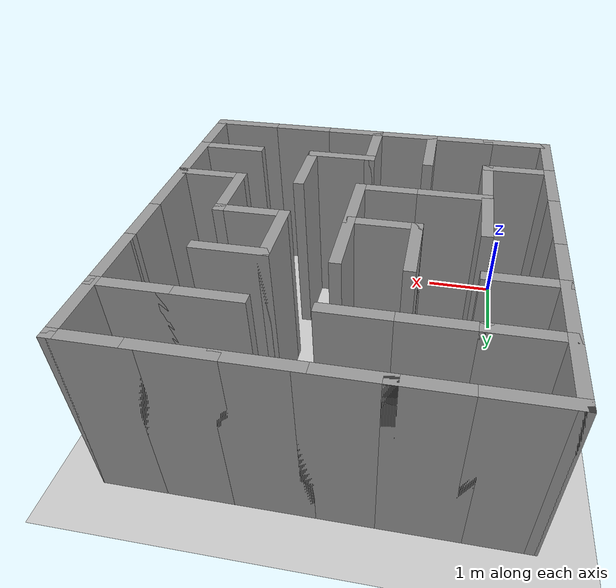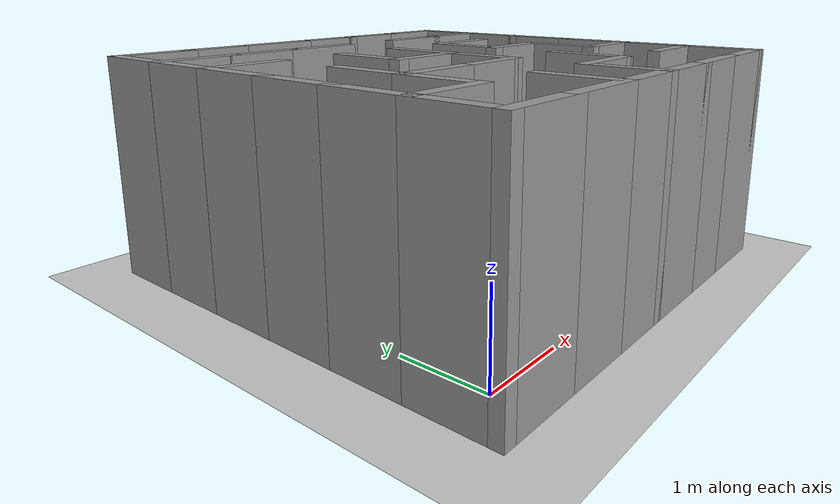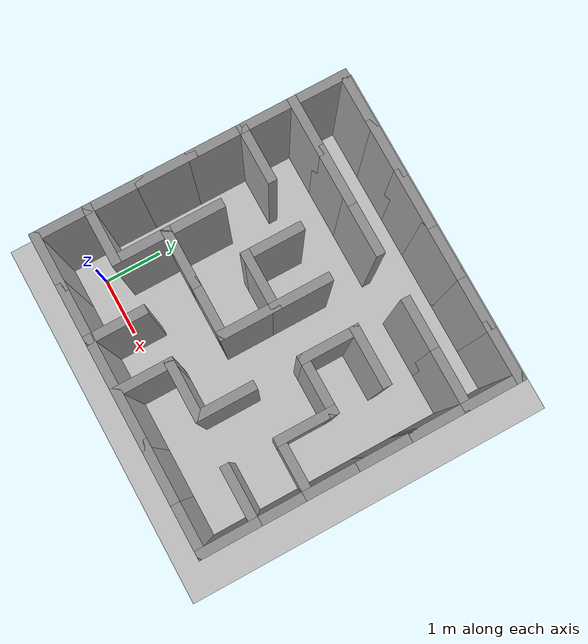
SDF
<sdf version="1.6">
 <world name="default">
  <scene><ambient>0.4 0.4 0.4 1</ambient><background>0.7 0.7 0.7 1</background><shadows>1</shadows></scene>
  <light name="sun" type="directional">
   <pose>0 0 10 0 -0 0</pose>
   <diffuse>0.8 0.8 0.8 1</diffuse>
   <specular>0.2 0.2 0.2 1</specular>
   <attenuation>
    <range>1000</range>
    <constant>0.9</constant>
    <linear>0.01</linear>
    <quadratic>0.001</quadratic>
   </attenuation>
   <direction>-0.5 0.1 -0.9</direction>
  </light>
  <model name="ground_plane">
   <static>1</static>
   <link name="link">
    <collision name="collision">
     <geometry><plane><normal>0 0 1</normal><size>100 100</size></plane></geometry>
     <surface>
      <contact><collide_bitmask>65535</collide_bitmask></contact>
      <friction><ode><mu>100</mu><mu2>50</mu2></ode></friction>
     </surface>
    </collision>
    <visual name="visual">
     <cast_shadows>0</cast_shadows>
     <geometry><plane><normal>0 0 1</normal><size>100 100</size></plane></geometry>
     <material>
      <script><uri>file://media/materials/scripts/gazebo.material</uri><name>Gazebo/Grey</name></script>
     </material>
    </visual>
   </link>
  </model>
  <physics name="default_physics" default="0" type="ode">
   <real_time_update_rate>1000</real_time_update_rate>
   <max_step_size>0.001</max_step_size>
   <real_time_factor>1</real_time_factor>
   <ode>
    <solver>
     <type>quick</type>
     <iters>150</iters>
     <precon_iters>0</precon_iters>
     <sor>1.4</sor>
     <use_dynamic_moi_rescaling>1</use_dynamic_moi_rescaling>
    </solver>
    <constraints>
     <cfm>1e-05</cfm>
     <erp>0.2</erp>
     <contact_max_correcting_vel>2000</contact_max_correcting_vel>
     <contact_surface_layer>0.01</contact_surface_layer>
    </constraints>
   </ode>
  </physics>
  <gravity>0 0 -9.8</gravity>
  <magnetic_field>6e-06 2.3e-05 -4.2e-05</magnetic_field>
  <atmosphere type="adiabatic"/>
  <spherical_coordinates>
   <surface_model>EARTH_WGS84</surface_model>
   <latitude_deg>0</latitude_deg>
   <longitude_deg>0</longitude_deg>
   <elevation>0</elevation>
   <heading_deg>0</heading_deg>
  </spherical_coordinates>
  <model name="1">
   <pose>2.0634 2.09094 0 0 -0 0</pose>
   <link name="Wall_0">
    <collision name="Wall_0_Collision">
     <geometry><box><size>1 0.15 2.5</size></box></geometry>
     <pose>0 0 1.25 0 -0 0</pose>
    </collision>
    <visual name="Wall_0_Visual">
     <pose>0 0 1.25 0 -0 0</pose>
     <geometry><box><size>1 0.15 2.5</size></box></geometry>
     <material>
      <script><uri>file://media/materials/scripts/gazebo.material</uri><name>Gazebo/Grey</name></script>
      <ambient>1 1 1 1</ambient>
     </material>
     <meta><layer>0</layer></meta>
    </visual>
    <pose>-0.425 -2.55 0 0 -0 0</pose>
   </link>
   <link name="Wall_10">
    <collision name="Wall_10_Collision">
     <geometry><box><size>1 0.15 2.5</size></box></geometry>
     <pose>0 0 1.25 0 -0 0</pose>
    </collision>
    <visual name="Wall_10_Visual">
     <pose>0 0 1.25 0 -0 0</pose>
     <geometry><box><size>1 0.15 2.5</size></box></geometry>
     <material>
      <script><uri>file://media/materials/scripts/gazebo.material</uri><name>Gazebo/Grey</name></script>
      <ambient>1 1 1 1</ambient>
     </material>
     <meta><layer>0</layer></meta>
    </visual>
    <pose>2.125 -2.55 0 0 -0 0</pose>
   </link>
   <link name="Wall_101">
    <collision name="Wall_101_Collision">
     <geometry><box><size>1 0.15 2.5</size></box></geometry>
     <pose>0 0 1.25 0 -0 0</pose>
    </collision>
    <visual name="Wall_101_Visual">
     <pose>0 0 1.25 0 -0 0</pose>
     <geometry><box><size>1 0.15 2.5</size></box></geometry>
     <material>
      <script><uri>file://media/materials/scripts/gazebo.material</uri><name>Gazebo/Grey</name></script>
      <ambient>1 1 1 1</ambient>
     </material>
     <meta><layer>0</layer></meta>
    </visual>
    <pose>2.55 2.125 0 0 -0 1.5708</pose>
   </link>
   <link name="Wall_12">
    <collision name="Wall_12_Collision">
     <geometry><box><size>1 0.15 2.5</size></box></geometry>
     <pose>0 0 1.25 0 -0 0</pose>
    </collision>
    <visual name="Wall_12_Visual">
     <pose>0 0 1.25 0 -0 0</pose>
     <geometry><box><size>1 0.15 2.5</size></box></geometry>
     <material>
      <script><uri>file://media/materials/scripts/gazebo.material</uri><name>Gazebo/Grey</name></script>
      <ambient>1 1 1 1</ambient>
     </material>
     <meta><layer>0</layer></meta>
    </visual>
    <pose>2.55 -2.125 0 0 -0 1.5708</pose>
   </link>
   <link name="Wall_14">
    <collision name="Wall_14_Collision">
     <geometry><box><size>1 0.15 2.5</size></box></geometry>
     <pose>0 0 1.25 0 -0 0</pose>
    </collision>
    <visual name="Wall_14_Visual">
     <pose>0 0 1.25 0 -0 0</pose>
     <geometry><box><size>1 0.15 2.5</size></box></geometry>
     <material>
      <script><uri>file://media/materials/scripts/gazebo.material</uri><name>Gazebo/Grey</name></script>
      <ambient>1 1 1 1</ambient>
     </material>
     <meta><layer>0</layer></meta>
    </visual>
    <pose>2.125 -1.7 0 0 -0 3.14159</pose>
   </link>
   <link name="Wall_17">
    <collision name="Wall_17_Collision">
     <geometry><box><size>1 0.15 2.5</size></box></geometry>
     <pose>0 0 1.25 0 -0 0</pose>
    </collision>
    <visual name="Wall_17_Visual">
     <pose>0 0 1.25 0 -0 0</pose>
     <geometry><box><size>1 0.15 2.5</size></box></geometry>
     <material>
      <script><uri>file://media/materials/scripts/gazebo.material</uri><name>Gazebo/Grey</name></script>
      <ambient>1 1 1 1</ambient>
     </material>
     <meta><layer>0</layer></meta>
    </visual>
    <pose>-0.85 -2.125 0 0 -0 1.5708</pose>
   </link>
   <link name="Wall_19">
    <collision name="Wall_19_Collision">
     <geometry><box><size>1 0.15 2.5</size></box></geometry>
     <pose>0 0 1.25 0 -0 0</pose>
    </collision>
    <visual name="Wall_19_Visual">
     <pose>0 0 1.25 0 -0 0</pose>
     <geometry><box><size>1 0.15 2.5</size></box></geometry>
     <material>
      <script><uri>file://media/materials/scripts/gazebo.material</uri><name>Gazebo/Grey</name></script>
      <ambient>1 1 1 1</ambient>
     </material>
     <meta><layer>0</layer></meta>
    </visual>
    <pose>-1.275 -2.55 0 0 -0 3.14159</pose>
   </link>
   <link name="Wall_2">
    <collision name="Wall_2_Collision">
     <geometry><box><size>1 0.15 2.5</size></box></geometry>
     <pose>0 0 1.25 0 -0 0</pose>
    </collision>
    <visual name="Wall_2_Visual">
     <pose>0 0 1.25 0 -0 0</pose>
     <geometry><box><size>1 0.15 2.5</size></box></geometry>
     <material>
      <script><uri>file://media/materials/scripts/gazebo.material</uri><name>Gazebo/Grey</name></script>
      <ambient>1 1 1 1</ambient>
     </material>
     <meta><layer>0</layer></meta>
    </visual>
    <pose>0 -2.125 0 0 -0 1.5708</pose>
   </link>
   <link name="Wall_21">
    <collision name="Wall_21_Collision">
     <geometry><box><size>1 0.15 2.5</size></box></geometry>
     <pose>0 0 1.25 0 -0 0</pose>
    </collision>
    <visual name="Wall_21_Visual">
     <pose>0 0 1.25 0 -0 0</pose>
     <geometry><box><size>1 0.15 2.5</size></box></geometry>
     <material>
      <script><uri>file://media/materials/scripts/gazebo.material</uri><name>Gazebo/Grey</name></script>
      <ambient>1 1 1 1</ambient>
     </material>
     <meta><layer>0</layer></meta>
    </visual>
    <pose>-2.125 -2.55 0 0 -0 3.14159</pose>
   </link>
   <link name="Wall_23">
    <collision name="Wall_23_Collision">
     <geometry><box><size>1 0.15 2.5</size></box></geometry>
     <pose>0 0 1.25 0 -0 0</pose>
    </collision>
    <visual name="Wall_23_Visual">
     <pose>0 0 1.25 0 -0 0</pose>
     <geometry><box><size>1 0.15 2.5</size></box></geometry>
     <material>
      <script><uri>file://media/materials/scripts/gazebo.material</uri><name>Gazebo/Grey</name></script>
      <ambient>1 1 1 1</ambient>
     </material>
     <meta><layer>0</layer></meta>
    </visual>
    <pose>-2.55 -2.125 0 0 -0 1.5708</pose>
   </link>
   <link name="Wall_25">
    <collision name="Wall_25_Collision">
     <geometry><box><size>1 0.15 2.5</size></box></geometry>
     <pose>0 0 1.25 0 -0 0</pose>
    </collision>
    <visual name="Wall_25_Visual">
     <pose>0 0 1.25 0 -0 0</pose>
     <geometry><box><size>1 0.15 2.5</size></box></geometry>
     <material>
      <script><uri>file://media/materials/scripts/gazebo.material</uri><name>Gazebo/Grey</name></script>
      <ambient>1 1 1 1</ambient>
     </material>
     <meta><layer>0</layer></meta>
    </visual>
    <pose>-2.125 -1.7 0 0 -0 0</pose>
   </link>
   <link name="Wall_27">
    <collision name="Wall_27_Collision">
     <geometry><box><size>1 0.15 2.5</size></box></geometry>
     <pose>0 0 1.25 0 -0 0</pose>
    </collision>
    <visual name="Wall_27_Visual">
     <pose>0 0 1.25 0 -0 0</pose>
     <geometry><box><size>1 0.15 2.5</size></box></geometry>
     <material>
      <script><uri>file://media/materials/scripts/gazebo.material</uri><name>Gazebo/Grey</name></script>
      <ambient>1 1 1 1</ambient>
     </material>
     <meta><layer>0</layer></meta>
    </visual>
    <pose>-1.7 -1.275 0 0 -0 1.5708</pose>
   </link>
   <link name="Wall_29">
    <collision name="Wall_29_Collision">
     <geometry><box><size>1 0.15 2.5</size></box></geometry>
     <pose>0 0 1.25 0 -0 0</pose>
    </collision>
    <visual name="Wall_29_Visual">
     <pose>0 0 1.25 0 -0 0</pose>
     <geometry><box><size>1 0.15 2.5</size></box></geometry>
     <material>
      <script><uri>file://media/materials/scripts/gazebo.material</uri><name>Gazebo/Grey</name></script>
      <ambient>1 1 1 1</ambient>
     </material>
     <meta><layer>0</layer></meta>
    </visual>
    <pose>-1.275 -0.85 0 0 -0 0</pose>
   </link>
   <link name="Wall_31">
    <collision name="Wall_31_Collision">
     <geometry><box><size>1 0.15 2.5</size></box></geometry>
     <pose>0 0 1.25 0 -0 0</pose>
    </collision>
    <visual name="Wall_31_Visual">
     <pose>0 0 1.25 0 -0 0</pose>
     <geometry><box><size>1 0.15 2.5</size></box></geometry>
     <material>
      <script><uri>file://media/materials/scripts/gazebo.material</uri><name>Gazebo/Grey</name></script>
      <ambient>1 1 1 1</ambient>
     </material>
     <meta><layer>0</layer></meta>
    </visual>
    <pose>-0.425 -0.85 0 0 -0 0</pose>
   </link>
   <link name="Wall_33">
    <collision name="Wall_33_Collision">
     <geometry><box><size>1 0.15 2.5</size></box></geometry>
     <pose>0 0 1.25 0 -0 0</pose>
    </collision>
    <visual name="Wall_33_Visual">
     <pose>0 0 1.25 0 -0 0</pose>
     <geometry><box><size>1 0.15 2.5</size></box></geometry>
     <material>
      <script><uri>file://media/materials/scripts/gazebo.material</uri><name>Gazebo/Grey</name></script>
      <ambient>1 1 1 1</ambient>
     </material>
     <meta><layer>0</layer></meta>
    </visual>
    <pose>0.85 -1.275 0 0 -0 1.5708</pose>
   </link>
   <link name="Wall_35">
    <collision name="Wall_35_Collision">
     <geometry><box><size>1 0.15 2.5</size></box></geometry>
     <pose>0 0 1.25 0 -0 0</pose>
    </collision>
    <visual name="Wall_35_Visual">
     <pose>0 0 1.25 0 -0 0</pose>
     <geometry><box><size>1 0.15 2.5</size></box></geometry>
     <material>
      <script><uri>file://media/materials/scripts/gazebo.material</uri><name>Gazebo/Grey</name></script>
      <ambient>1 1 1 1</ambient>
     </material>
     <meta><layer>0</layer></meta>
    </visual>
    <pose>-2.55 -1.275 0 0 -0 1.5708</pose>
   </link>
   <link name="Wall_37">
    <collision name="Wall_37_Collision">
     <geometry><box><size>1 0.15 2.5</size></box></geometry>
     <pose>0 0 1.25 0 -0 0</pose>
    </collision>
    <visual name="Wall_37_Visual">
     <pose>0 0 1.25 0 -0 0</pose>
     <geometry><box><size>1 0.15 2.5</size></box></geometry>
     <material>
      <script><uri>file://media/materials/scripts/gazebo.material</uri><name>Gazebo/Grey</name></script>
      <ambient>1 1 1 1</ambient>
     </material>
     <meta><layer>0</layer></meta>
    </visual>
    <pose>-2.55 -0.425 0 0 -0 1.5708</pose>
   </link>
   <link name="Wall_39">
    <collision name="Wall_39_Collision">
     <geometry><box><size>1 0.15 2.5</size></box></geometry>
     <pose>0 0 1.25 0 -0 0</pose>
    </collision>
    <visual name="Wall_39_Visual">
     <pose>0 0 1.25 0 -0 0</pose>
     <geometry><box><size>1 0.15 2.5</size></box></geometry>
     <material>
      <script><uri>file://media/materials/scripts/gazebo.material</uri><name>Gazebo/Grey</name></script>
      <ambient>1 1 1 1</ambient>
     </material>
     <meta><layer>0</layer></meta>
    </visual>
    <pose>2.55 -1.275 0 0 -0 1.5708</pose>
   </link>
   <link name="Wall_4">
    <collision name="Wall_4_Collision">
     <geometry><box><size>1 0.15 2.5</size></box></geometry>
     <pose>0 0 1.25 0 -0 0</pose>
    </collision>
    <visual name="Wall_4_Visual">
     <pose>0 0 1.25 0 -0 0</pose>
     <geometry><box><size>1 0.15 2.5</size></box></geometry>
     <material>
      <script><uri>file://media/materials/scripts/gazebo.material</uri><name>Gazebo/Grey</name></script>
      <ambient>1 1 1 1</ambient>
     </material>
     <meta><layer>0</layer></meta>
    </visual>
    <pose>0.425 -1.7 0 0 -0 0</pose>
   </link>
   <link name="Wall_41">
    <collision name="Wall_41_Collision">
     <geometry><box><size>1 0.15 2.5</size></box></geometry>
     <pose>0 0 1.25 0 -0 0</pose>
    </collision>
    <visual name="Wall_41_Visual">
     <pose>0 0 1.25 0 -0 0</pose>
     <geometry><box><size>1 0.15 2.5</size></box></geometry>
     <material>
      <script><uri>file://media/materials/scripts/gazebo.material</uri><name>Gazebo/Grey</name></script>
      <ambient>1 1 1 1</ambient>
     </material>
     <meta><layer>0</layer></meta>
    </visual>
    <pose>2.125 -0.85 0 0 -0 3.14159</pose>
   </link>
   <link name="Wall_44">
    <collision name="Wall_44_Collision">
     <geometry><box><size>1 0.15 2.5</size></box></geometry>
     <pose>0 0 1.25 0 -0 0</pose>
    </collision>
    <visual name="Wall_44_Visual">
     <pose>0 0 1.25 0 -0 0</pose>
     <geometry><box><size>1 0.15 2.5</size></box></geometry>
     <material>
      <script><uri>file://media/materials/scripts/gazebo.material</uri><name>Gazebo/Grey</name></script>
      <ambient>1 1 1 1</ambient>
     </material>
     <meta><layer>0</layer></meta>
    </visual>
    <pose>1.7 -0.425 0 0 -0 1.5708</pose>
   </link>
   <link name="Wall_46">
    <collision name="Wall_46_Collision">
     <geometry><box><size>1 0.15 2.5</size></box></geometry>
     <pose>0 0 1.25 0 -0 0</pose>
    </collision>
    <visual name="Wall_46_Visual">
     <pose>0 0 1.25 0 -0 0</pose>
     <geometry><box><size>1 0.15 2.5</size></box></geometry>
     <material>
      <script><uri>file://media/materials/scripts/gazebo.material</uri><name>Gazebo/Grey</name></script>
      <ambient>1 1 1 1</ambient>
     </material>
     <meta><layer>0</layer></meta>
    </visual>
    <pose>1.275 0 0 0 -0 3.14159</pose>
   </link>
   <link name="Wall_48">
    <collision name="Wall_48_Collision">
     <geometry><box><size>1 0.15 2.5</size></box></geometry>
     <pose>0 0 1.25 0 -0 0</pose>
    </collision>
    <visual name="Wall_48_Visual">
     <pose>0 0 1.25 0 -0 0</pose>
     <geometry><box><size>1 0.15 2.5</size></box></geometry>
     <material>
      <script><uri>file://media/materials/scripts/gazebo.material</uri><name>Gazebo/Grey</name></script>
      <ambient>1 1 1 1</ambient>
     </material>
     <meta><layer>0</layer></meta>
    </visual>
    <pose>0 -0.425 0 0 -0 1.5708</pose>
   </link>
   <link name="Wall_50">
    <collision name="Wall_50_Collision">
     <geometry><box><size>1 0.15 2.5</size></box></geometry>
     <pose>0 0 1.25 0 -0 0</pose>
    </collision>
    <visual name="Wall_50_Visual">
     <pose>0 0 1.25 0 -0 0</pose>
     <geometry><box><size>1 0.15 2.5</size></box></geometry>
     <material>
      <script><uri>file://media/materials/scripts/gazebo.material</uri><name>Gazebo/Grey</name></script>
      <ambient>1 1 1 1</ambient>
     </material>
     <meta><layer>0</layer></meta>
    </visual>
    <pose>-1.7 -0.425 0 0 -0 1.5708</pose>
   </link>
   <link name="Wall_52">
    <collision name="Wall_52_Collision">
     <geometry><box><size>1 0.15 2.5</size></box></geometry>
     <pose>0 0 1.25 0 -0 0</pose>
    </collision>
    <visual name="Wall_52_Visual">
     <pose>0 0 1.25 0 -0 0</pose>
     <geometry><box><size>1 0.15 2.5</size></box></geometry>
     <material>
      <script><uri>file://media/materials/scripts/gazebo.material</uri><name>Gazebo/Grey</name></script>
      <ambient>1 1 1 1</ambient>
     </material>
     <meta><layer>0</layer></meta>
    </visual>
    <pose>2.55 -0.425 0 0 -0 1.5708</pose>
   </link>
   <link name="Wall_54">
    <collision name="Wall_54_Collision">
     <geometry><box><size>1 0.15 2.5</size></box></geometry>
     <pose>0 0 1.25 0 -0 0</pose>
    </collision>
    <visual name="Wall_54_Visual">
     <pose>0 0 1.25 0 -0 0</pose>
     <geometry><box><size>1 0.15 2.5</size></box></geometry>
     <material>
      <script><uri>file://media/materials/scripts/gazebo.material</uri><name>Gazebo/Grey</name></script>
      <ambient>1 1 1 1</ambient>
     </material>
     <meta><layer>0</layer></meta>
    </visual>
    <pose>-2.55 0.425 0 0 -0 1.5708</pose>
   </link>
   <link name="Wall_56">
    <collision name="Wall_56_Collision">
     <geometry><box><size>1 0.15 2.5</size></box></geometry>
     <pose>0 0 1.25 0 -0 0</pose>
    </collision>
    <visual name="Wall_56_Visual">
     <pose>0 0 1.25 0 -0 0</pose>
     <geometry><box><size>1 0.15 2.5</size></box></geometry>
     <material>
      <script><uri>file://media/materials/scripts/gazebo.material</uri><name>Gazebo/Grey</name></script>
      <ambient>1 1 1 1</ambient>
     </material>
     <meta><layer>0</layer></meta>
    </visual>
    <pose>-2.125 0.85 0 0 -0 0</pose>
   </link>
   <link name="Wall_58">
    <collision name="Wall_58_Collision">
     <geometry><box><size>1 0.15 2.5</size></box></geometry>
     <pose>0 0 1.25 0 -0 0</pose>
    </collision>
    <visual name="Wall_58_Visual">
     <pose>0 0 1.25 0 -0 0</pose>
     <geometry><box><size>1 0.15 2.5</size></box></geometry>
     <material>
      <script><uri>file://media/materials/scripts/gazebo.material</uri><name>Gazebo/Grey</name></script>
      <ambient>1 1 1 1</ambient>
     </material>
     <meta><layer>0</layer></meta>
    </visual>
    <pose>-0.425 0 0 0 -0 3.14159</pose>
   </link>
   <link name="Wall_6">
    <collision name="Wall_6_Collision">
     <geometry><box><size>1 0.15 2.5</size></box></geometry>
     <pose>0 0 1.25 0 -0 0</pose>
    </collision>
    <visual name="Wall_6_Visual">
     <pose>0 0 1.25 0 -0 0</pose>
     <geometry><box><size>1 0.15 2.5</size></box></geometry>
     <material>
      <script><uri>file://media/materials/scripts/gazebo.material</uri><name>Gazebo/Grey</name></script>
      <ambient>1 1 1 1</ambient>
     </material>
     <meta><layer>0</layer></meta>
    </visual>
    <pose>0.425 -2.55 0 0 -0 0</pose>
   </link>
   <link name="Wall_60">
    <collision name="Wall_60_Collision">
     <geometry><box><size>1 0.15 2.5</size></box></geometry>
     <pose>0 0 1.25 0 -0 0</pose>
    </collision>
    <visual name="Wall_60_Visual">
     <pose>0 0 1.25 0 -0 0</pose>
     <geometry><box><size>1 0.15 2.5</size></box></geometry>
     <material>
      <script><uri>file://media/materials/scripts/gazebo.material</uri><name>Gazebo/Grey</name></script>
      <ambient>1 1 1 1</ambient>
     </material>
     <meta><layer>0</layer></meta>
    </visual>
    <pose>0.85 0.425 0 0 -0 1.5708</pose>
   </link>
   <link name="Wall_62">
    <collision name="Wall_62_Collision">
     <geometry><box><size>1 0.15 2.5</size></box></geometry>
     <pose>0 0 1.25 0 -0 0</pose>
    </collision>
    <visual name="Wall_62_Visual">
     <pose>0 0 1.25 0 -0 0</pose>
     <geometry><box><size>1 0.15 2.5</size></box></geometry>
     <material>
      <script><uri>file://media/materials/scripts/gazebo.material</uri><name>Gazebo/Grey</name></script>
      <ambient>1 1 1 1</ambient>
     </material>
     <meta><layer>0</layer></meta>
    </visual>
    <pose>0 0.425 0 0 -0 1.5708</pose>
   </link>
   <link name="Wall_64">
    <collision name="Wall_64_Collision">
     <geometry><box><size>1 0.15 2.5</size></box></geometry>
     <pose>0 0 1.25 0 -0 0</pose>
    </collision>
    <visual name="Wall_64_Visual">
     <pose>0 0 1.25 0 -0 0</pose>
     <geometry><box><size>1 0.15 2.5</size></box></geometry>
     <material>
      <script><uri>file://media/materials/scripts/gazebo.material</uri><name>Gazebo/Grey</name></script>
      <ambient>1 1 1 1</ambient>
     </material>
     <meta><layer>0</layer></meta>
    </visual>
    <pose>-0.85 0.425 0 0 -0 1.5708</pose>
   </link>
   <link name="Wall_66">
    <collision name="Wall_66_Collision">
     <geometry><box><size>1 0.15 2.5</size></box></geometry>
     <pose>0 0 1.25 0 -0 0</pose>
    </collision>
    <visual name="Wall_66_Visual">
     <pose>0 0 1.25 0 -0 0</pose>
     <geometry><box><size>1 0.15 2.5</size></box></geometry>
     <material>
      <script><uri>file://media/materials/scripts/gazebo.material</uri><name>Gazebo/Grey</name></script>
      <ambient>1 1 1 1</ambient>
     </material>
     <meta><layer>0</layer></meta>
    </visual>
    <pose>-2.55 1.275 0 0 -0 1.5708</pose>
   </link>
   <link name="Wall_68">
    <collision name="Wall_68_Collision">
     <geometry><box><size>1 0.15 2.5</size></box></geometry>
     <pose>0 0 1.25 0 -0 0</pose>
    </collision>
    <visual name="Wall_68_Visual">
     <pose>0 0 1.25 0 -0 0</pose>
     <geometry><box><size>1 0.15 2.5</size></box></geometry>
     <material>
      <script><uri>file://media/materials/scripts/gazebo.material</uri><name>Gazebo/Grey</name></script>
      <ambient>1 1 1 1</ambient>
     </material>
     <meta><layer>0</layer></meta>
    </visual>
    <pose>-2.125 1.7 0 0 -0 0</pose>
   </link>
   <link name="Wall_70">
    <collision name="Wall_70_Collision">
     <geometry><box><size>1 0.15 2.5</size></box></geometry>
     <pose>0 0 1.25 0 -0 0</pose>
    </collision>
    <visual name="Wall_70_Visual">
     <pose>0 0 1.25 0 -0 0</pose>
     <geometry><box><size>1 0.15 2.5</size></box></geometry>
     <material>
      <script><uri>file://media/materials/scripts/gazebo.material</uri><name>Gazebo/Grey</name></script>
      <ambient>1 1 1 1</ambient>
     </material>
     <meta><layer>0</layer></meta>
    </visual>
    <pose>-1.275 1.7 0 0 -0 0</pose>
   </link>
   <link name="Wall_72">
    <collision name="Wall_72_Collision">
     <geometry><box><size>1 0.15 2.5</size></box></geometry>
     <pose>0 0 1.25 0 -0 0</pose>
    </collision>
    <visual name="Wall_72_Visual">
     <pose>0 0 1.25 0 -0 0</pose>
     <geometry><box><size>1 0.15 2.5</size></box></geometry>
     <material>
      <script><uri>file://media/materials/scripts/gazebo.material</uri><name>Gazebo/Grey</name></script>
      <ambient>1 1 1 1</ambient>
     </material>
     <meta><layer>0</layer></meta>
    </visual>
    <pose>-0.425 1.7 0 0 -0 0</pose>
   </link>
   <link name="Wall_76">
    <collision name="Wall_76_Collision">
     <geometry><box><size>1 0.15 2.5</size></box></geometry>
     <pose>0 0 1.25 0 -0 0</pose>
    </collision>
    <visual name="Wall_76_Visual">
     <pose>0 0 1.25 0 -0 0</pose>
     <geometry><box><size>1 0.15 2.5</size></box></geometry>
     <material>
      <script><uri>file://media/materials/scripts/gazebo.material</uri><name>Gazebo/Grey</name></script>
      <ambient>1 1 1 1</ambient>
     </material>
     <meta><layer>0</layer></meta>
    </visual>
    <pose>1.275 1.7 0 0 -0 0</pose>
   </link>
   <link name="Wall_78">
    <collision name="Wall_78_Collision">
     <geometry><box><size>1 0.15 2.5</size></box></geometry>
     <pose>0 0 1.25 0 -0 0</pose>
    </collision>
    <visual name="Wall_78_Visual">
     <pose>0 0 1.25 0 -0 0</pose>
     <geometry><box><size>1 0.15 2.5</size></box></geometry>
     <material>
      <script><uri>file://media/materials/scripts/gazebo.material</uri><name>Gazebo/Grey</name></script>
      <ambient>1 1 1 1</ambient>
     </material>
     <meta><layer>0</layer></meta>
    </visual>
    <pose>2.125 1.7 0 0 -0 0</pose>
   </link>
   <link name="Wall_8">
    <collision name="Wall_8_Collision">
     <geometry><box><size>1 0.15 2.5</size></box></geometry>
     <pose>0 0 1.25 0 -0 0</pose>
    </collision>
    <visual name="Wall_8_Visual">
     <pose>0 0 1.25 0 -0 0</pose>
     <geometry><box><size>1 0.15 2.5</size></box></geometry>
     <material>
      <script><uri>file://media/materials/scripts/gazebo.material</uri><name>Gazebo/Grey</name></script>
      <ambient>1 1 1 1</ambient>
     </material>
     <meta><layer>0</layer></meta>
    </visual>
    <pose>1.275 -2.55 0 0 -0 0</pose>
   </link>
   <link name="Wall_80">
    <collision name="Wall_80_Collision">
     <geometry><box><size>1 0.15 2.5</size></box></geometry>
     <pose>0 0 1.25 0 -0 0</pose>
    </collision>
    <visual name="Wall_80_Visual">
     <pose>0 0 1.25 0 -0 0</pose>
     <geometry><box><size>1 0.15 2.5</size></box></geometry>
     <material>
      <script><uri>file://media/materials/scripts/gazebo.material</uri><name>Gazebo/Grey</name></script>
      <ambient>1 1 1 1</ambient>
     </material>
     <meta><layer>0</layer></meta>
    </visual>
    <pose>2.55 1.275 0 0 -0 -1.5708</pose>
   </link>
   <link name="Wall_82">
    <collision name="Wall_82_Collision">
     <geometry><box><size>1 0.15 2.5</size></box></geometry>
     <pose>0 0 1.25 0 -0 0</pose>
    </collision>
    <visual name="Wall_82_Visual">
     <pose>0 0 1.25 0 -0 0</pose>
     <geometry><box><size>1 0.15 2.5</size></box></geometry>
     <material>
      <script><uri>file://media/materials/scripts/gazebo.material</uri><name>Gazebo/Grey</name></script>
      <ambient>1 1 1 1</ambient>
     </material>
     <meta><layer>0</layer></meta>
    </visual>
    <pose>2.55 0.425 0 0 -0 1.5708</pose>
   </link>
   <link name="Wall_84">
    <collision name="Wall_84_Collision">
     <geometry><box><size>1 0.15 2.5</size></box></geometry>
     <pose>0 0 1.25 0 -0 0</pose>
    </collision>
    <visual name="Wall_84_Visual">
     <pose>0 0 1.25 0 -0 0</pose>
     <geometry><box><size>1 0.15 2.5</size></box></geometry>
     <material>
      <script><uri>file://media/materials/scripts/gazebo.material</uri><name>Gazebo/Grey</name></script>
      <ambient>1 1 1 1</ambient>
     </material>
     <meta><layer>0</layer></meta>
    </visual>
    <pose>1.275 0.85 0 0 -0 0</pose>
   </link>
   <link name="Wall_87">
    <collision name="Wall_87_Collision">
     <geometry><box><size>1 0.15 2.5</size></box></geometry>
     <pose>0 0 1.25 0 -0 0</pose>
    </collision>
    <visual name="Wall_87_Visual">
     <pose>0 0 1.25 0 -0 0</pose>
     <geometry><box><size>1 0.15 2.5</size></box></geometry>
     <material>
      <script><uri>file://media/materials/scripts/gazebo.material</uri><name>Gazebo/Grey</name></script>
      <ambient>1 1 1 1</ambient>
     </material>
     <meta><layer>0</layer></meta>
    </visual>
    <pose>-2.55 2.125 0 0 -0 1.5708</pose>
   </link>
   <link name="Wall_89">
    <collision name="Wall_89_Collision">
     <geometry><box><size>1 0.15 2.5</size></box></geometry>
     <pose>0 0 1.25 0 -0 0</pose>
    </collision>
    <visual name="Wall_89_Visual">
     <pose>0 0 1.25 0 -0 0</pose>
     <geometry><box><size>1 0.15 2.5</size></box></geometry>
     <material>
      <script><uri>file://media/materials/scripts/gazebo.material</uri><name>Gazebo/Grey</name></script>
      <ambient>1 1 1 1</ambient>
     </material>
     <meta><layer>0</layer></meta>
    </visual>
    <pose>-2.125 2.55 0 0 -0 0</pose>
   </link>
   <link name="Wall_91">
    <collision name="Wall_91_Collision">
     <geometry><box><size>1 0.15 2.5</size></box></geometry>
     <pose>0 0 1.25 0 -0 0</pose>
    </collision>
    <visual name="Wall_91_Visual">
     <pose>0 0 1.25 0 -0 0</pose>
     <geometry><box><size>1 0.15 2.5</size></box></geometry>
     <material>
      <script><uri>file://media/materials/scripts/gazebo.material</uri><name>Gazebo/Grey</name></script>
      <ambient>1 1 1 1</ambient>
     </material>
     <meta><layer>0</layer></meta>
    </visual>
    <pose>-1.275 2.55 0 0 -0 0</pose>
   </link>
   <link name="Wall_93">
    <collision name="Wall_93_Collision">
     <geometry><box><size>1 0.15 2.5</size></box></geometry>
     <pose>0 0 1.25 0 -0 0</pose>
    </collision>
    <visual name="Wall_93_Visual">
     <pose>0 0 1.25 0 -0 0</pose>
     <geometry><box><size>1 0.15 2.5</size></box></geometry>
     <material>
      <script><uri>file://media/materials/scripts/gazebo.material</uri><name>Gazebo/Grey</name></script>
      <ambient>1 1 1 1</ambient>
     </material>
     <meta><layer>0</layer></meta>
    </visual>
    <pose>-0.425 2.55 0 0 -0 0</pose>
   </link>
   <link name="Wall_95">
    <collision name="Wall_95_Collision">
     <geometry><box><size>1 0.15 2.5</size></box></geometry>
     <pose>0 0 1.25 0 -0 0</pose>
    </collision>
    <visual name="Wall_95_Visual">
     <pose>0 0 1.25 0 -0 0</pose>
     <geometry><box><size>1 0.15 2.5</size></box></geometry>
     <material>
      <script><uri>file://media/materials/scripts/gazebo.material</uri><name>Gazebo/Grey</name></script>
      <ambient>1 1 1 1</ambient>
     </material>
     <meta><layer>0</layer></meta>
    </visual>
    <pose>0.425 2.55 0 0 -0 0</pose>
   </link>
   <link name="Wall_97">
    <collision name="Wall_97_Collision">
     <geometry><box><size>1 0.15 2.5</size></box></geometry>
     <pose>0 0 1.25 0 -0 0</pose>
    </collision>
    <visual name="Wall_97_Visual">
     <pose>0 0 1.25 0 -0 0</pose>
     <geometry><box><size>1 0.15 2.5</size></box></geometry>
     <material>
      <script><uri>file://media/materials/scripts/gazebo.material</uri><name>Gazebo/Grey</name></script>
      <ambient>1 1 1 1</ambient>
     </material>
     <meta><layer>0</layer></meta>
    </visual>
    <pose>1.275 2.55 0 0 -0 0</pose>
   </link>
   <link name="Wall_99">
    <collision name="Wall_99_Collision">
     <geometry><box><size>1 0.15 2.5</size></box></geometry>
     <pose>0 0 1.25 0 -0 0</pose>
    </collision>
    <visual name="Wall_99_Visual">
     <pose>0 0 1.25 0 -0 0</pose>
     <geometry><box><size>1 0.15 2.5</size></box></geometry>
     <material>
      <script><uri>file://media/materials/scripts/gazebo.material</uri><name>Gazebo/Grey</name></script>
      <ambient>1 1 1 1</ambient>
     </material>
     <meta><layer>0</layer></meta>
    </visual>
    <pose>2.125 2.55 0 0 -0 0</pose>
   </link>
   <static>1</static>
  </model>
 </world>
</sdf>
